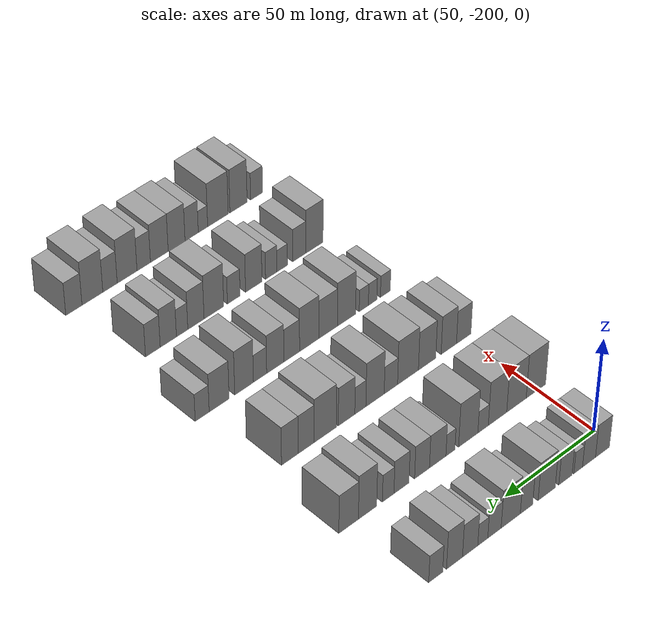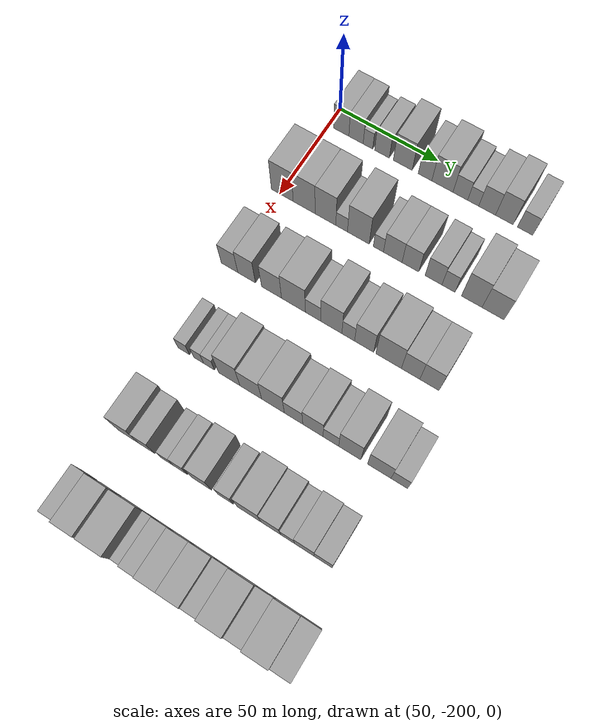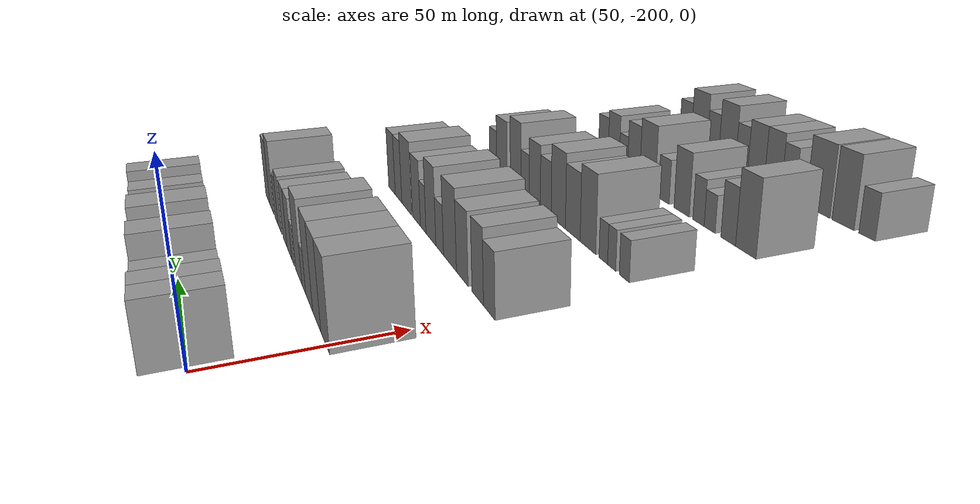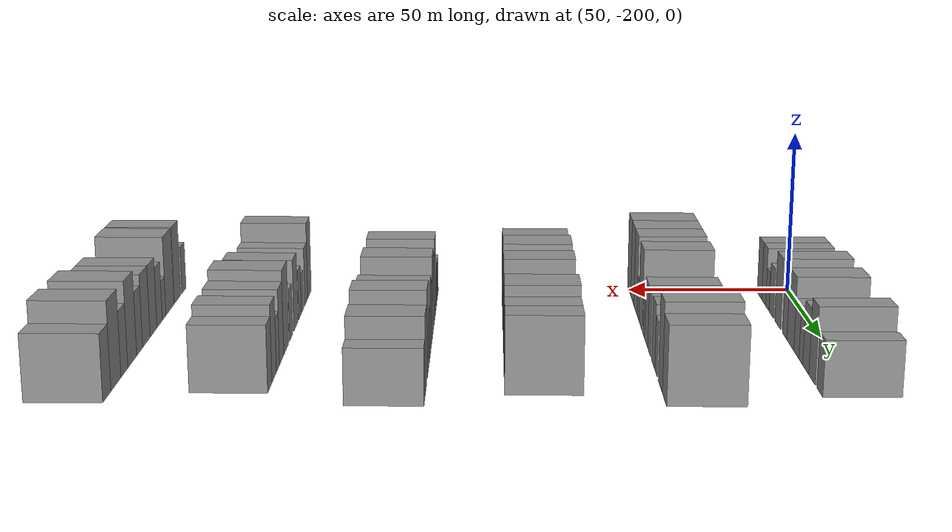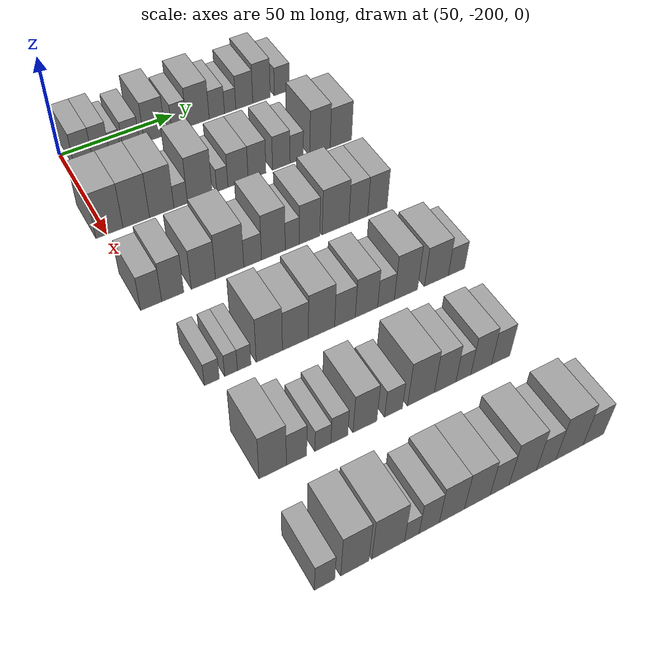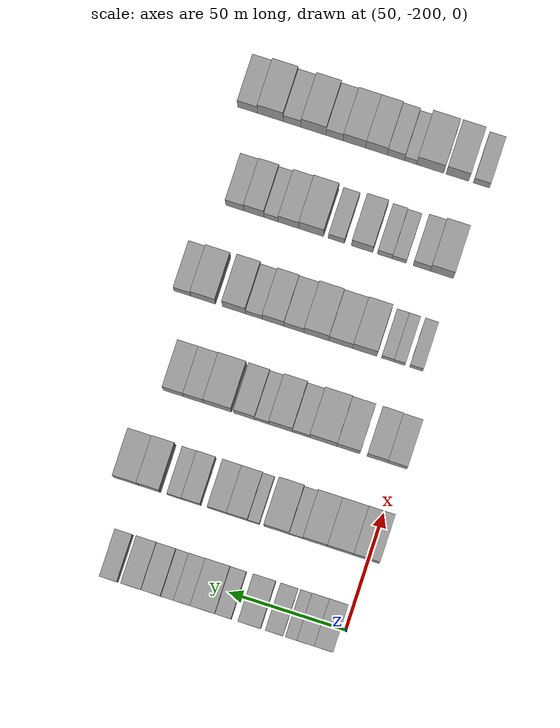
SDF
<sdf version="1.6">
 <world name="default">
  <model name="building_49">
   <static>1</static>
   <pose>50.0000 -193.6138 0 0.000000 0.000000 0.000000</pose>
   <link name="link">
    <pose>0 0 9.00 0 0 0</pose>
    <collision name="collision"><geometry><box><size>20.0000 7.9500 18.0000</size></box></geometry></collision>
    <visual name="visual">
     <cast_shadows>0</cast_shadows>
     <geometry><box><size>20.0000 7.9500 18.0000</size></box></geometry>
     <material>
      <script>
       <uri>model://grey_wall/materials/scripts</uri>
       <uri>model://grey_wall/materials/textures</uri>
       <name>vrc/grey_wall</name>
      </script>
     </material>
    </visual>
   </link>
  </model>
  <model name="building_50">
   <static>1</static>
   <pose>50.0000 -185.9637 0 0.000000 0.000000 0.000000</pose>
   <link name="link">
    <pose>0 0 9.00 0 0 0</pose>
    <collision name="collision"><geometry><box><size>20.0000 7.3501 18.0000</size></box></geometry></collision>
    <visual name="visual">
     <cast_shadows>0</cast_shadows>
     <geometry><box><size>20.0000 7.3501 18.0000</size></box></geometry>
     <material>
      <script>
       <uri>model://grey_wall/materials/scripts</uri>
       <uri>model://grey_wall/materials/textures</uri>
       <name>vrc/grey_wall</name>
      </script>
     </material>
    </visual>
   </link>
  </model>
  <model name="building_51">
   <static>1</static>
   <pose>50.0000 -179.8526 0 0.000000 0.000000 0.000000</pose>
   <link name="link">
    <pose>0 0 6.00 0 0 0</pose>
    <collision name="collision"><geometry><box><size>20.0000 4.8722 12.0000</size></box></geometry></collision>
    <visual name="visual">
     <cast_shadows>0</cast_shadows>
     <geometry><box><size>20.0000 4.8722 12.0000</size></box></geometry>
     <material>
      <script>
       <uri>model://grey_wall/materials/scripts</uri>
       <uri>model://grey_wall/materials/textures</uri>
       <name>vrc/grey_wall</name>
      </script>
     </material>
    </visual>
   </link>
  </model>
  <model name="building_52">
   <static>1</static>
   <pose>50.0000 -172.6999 0 0.000000 0.000000 0.000000</pose>
   <link name="link">
    <pose>0 0 7.50 0 0 0</pose>
    <collision name="collision"><geometry><box><size>20.0000 7.4332 15.0000</size></box></geometry></collision>
    <visual name="visual">
     <cast_shadows>0</cast_shadows>
     <geometry><box><size>20.0000 7.4332 15.0000</size></box></geometry>
     <material>
      <script>
       <uri>model://grey_wall/materials/scripts</uri>
       <uri>model://grey_wall/materials/textures</uri>
       <name>vrc/grey_wall</name>
      </script>
     </material>
    </visual>
   </link>
  </model>
  <model name="building_53">
   <static>1</static>
   <pose>50.0000 -162.2387 0 0.000000 0.000000 0.000000</pose>
   <link name="link">
    <pose>0 0 10.50 0 0 0</pose>
    <collision name="collision"><geometry><box><size>20.0000 9.4893 21.0000</size></box></geometry></collision>
    <visual name="visual">
     <cast_shadows>0</cast_shadows>
     <geometry><box><size>20.0000 9.4893 21.0000</size></box></geometry>
     <material>
      <script>
       <uri>model://grey_wall/materials/scripts</uri>
       <uri>model://grey_wall/materials/textures</uri>
       <name>vrc/grey_wall</name>
      </script>
     </material>
    </visual>
   </link>
  </model>
  <model name="building_54">
   <static>1</static>
   <pose>50.0000 -151.1109 0 0.000000 0.000000 0.000000</pose>
   <link name="link">
    <pose>0 0 7.50 0 0 0</pose>
    <collision name="collision"><geometry><box><size>20.0000 6.7663 15.0000</size></box></geometry></collision>
    <visual name="visual">
     <cast_shadows>0</cast_shadows>
     <geometry><box><size>20.0000 6.7663 15.0000</size></box></geometry>
     <material>
      <script>
       <uri>model://grey_wall/materials/scripts</uri>
       <uri>model://grey_wall/materials/textures</uri>
       <name>vrc/grey_wall</name>
      </script>
     </material>
    </visual>
   </link>
  </model>
  <model name="building_55">
   <static>1</static>
   <pose>50.0000 -142.5127 0 0.000000 0.000000 0.000000</pose>
   <link name="link">
    <pose>0 0 10.50 0 0 0</pose>
    <collision name="collision"><geometry><box><size>20.0000 10.4299 21.0000</size></box></geometry></collision>
    <visual name="visual">
     <cast_shadows>0</cast_shadows>
     <geometry><box><size>20.0000 10.4299 21.0000</size></box></geometry>
     <material>
      <script>
       <uri>model://grey_wall/materials/scripts</uri>
       <uri>model://grey_wall/materials/textures</uri>
       <name>vrc/grey_wall</name>
      </script>
     </material>
    </visual>
   </link>
  </model>
  <model name="building_56">
   <static>1</static>
   <pose>50.0000 -133.7003 0 0.000000 0.000000 0.000000</pose>
   <link name="link">
    <pose>0 0 7.50 0 0 0</pose>
    <collision name="collision"><geometry><box><size>20.0000 7.1949 15.0000</size></box></geometry></collision>
    <visual name="visual">
     <cast_shadows>0</cast_shadows>
     <geometry><box><size>20.0000 7.1949 15.0000</size></box></geometry>
     <material>
      <script>
       <uri>model://grey_wall/materials/scripts</uri>
       <uri>model://grey_wall/materials/textures</uri>
       <name>vrc/grey_wall</name>
      </script>
     </material>
    </visual>
   </link>
  </model>
  <model name="building_57">
   <static>1</static>
   <pose>50.0000 -127.4242 0 0.000000 0.000000 0.000000</pose>
   <link name="link">
    <pose>0 0 6.00 0 0 0</pose>
    <collision name="collision"><geometry><box><size>20.0000 5.3573 12.0000</size></box></geometry></collision>
    <visual name="visual">
     <cast_shadows>0</cast_shadows>
     <geometry><box><size>20.0000 5.3573 12.0000</size></box></geometry>
     <material>
      <script>
       <uri>model://grey_wall/materials/scripts</uri>
       <uri>model://grey_wall/materials/textures</uri>
       <name>vrc/grey_wall</name>
      </script>
     </material>
    </visual>
   </link>
  </model>
  <model name="building_58">
   <static>1</static>
   <pose>50.0000 -120.6747 0 0.000000 0.000000 0.000000</pose>
   <link name="link">
    <pose>0 0 9.00 0 0 0</pose>
    <collision name="collision"><geometry><box><size>20.0000 8.1415 18.0000</size></box></geometry></collision>
    <visual name="visual">
     <cast_shadows>0</cast_shadows>
     <geometry><box><size>20.0000 8.1415 18.0000</size></box></geometry>
     <material>
      <script>
       <uri>model://grey_wall/materials/scripts</uri>
       <uri>model://grey_wall/materials/textures</uri>
       <name>vrc/grey_wall</name>
      </script>
     </material>
    </visual>
   </link>
  </model>
  <model name="building_59">
   <static>1</static>
   <pose>50.0000 -112.3836 0 0.000000 0.000000 0.000000</pose>
   <link name="link">
    <pose>0 0 10.50 0 0 0</pose>
    <collision name="collision"><geometry><box><size>20.0000 8.4407 21.0000</size></box></geometry></collision>
    <visual name="visual">
     <cast_shadows>0</cast_shadows>
     <geometry><box><size>20.0000 8.4407 21.0000</size></box></geometry>
     <material>
      <script>
       <uri>model://grey_wall/materials/scripts</uri>
       <uri>model://grey_wall/materials/textures</uri>
       <name>vrc/grey_wall</name>
      </script>
     </material>
    </visual>
   </link>
  </model>
  <model name="building_60">
   <static>1</static>
   <pose>50.0000 -102.4915 0 0.000000 0.000000 0.000000</pose>
   <link name="link">
    <pose>0 0 7.50 0 0 0</pose>
    <collision name="collision"><geometry><box><size>20.0000 7.3436 15.0000</size></box></geometry></collision>
    <visual name="visual">
     <cast_shadows>0</cast_shadows>
     <geometry><box><size>20.0000 7.3436 15.0000</size></box></geometry>
     <material>
      <script>
       <uri>model://grey_wall/materials/scripts</uri>
       <uri>model://grey_wall/materials/textures</uri>
       <name>vrc/grey_wall</name>
      </script>
     </material>
    </visual>
   </link>
  </model>
  <model name="building_183">
   <static>1</static>
   <pose>90.0000 -198.7965 0 0.000000 0.000000 0.000000</pose>
   <link name="link">
    <pose>0 0 12.00 0 0 0</pose>
    <collision name="collision"><geometry><box><size>20.0000 11.0806 24.0000</size></box></geometry></collision>
    <visual name="visual">
     <cast_shadows>0</cast_shadows>
     <geometry><box><size>20.0000 11.0806 24.0000</size></box></geometry>
     <material>
      <script>
       <uri>model://grey_wall/materials/scripts</uri>
       <uri>model://grey_wall/materials/textures</uri>
       <name>vrc/grey_wall</name>
      </script>
     </material>
    </visual>
   </link>
  </model>
  <model name="building_184">
   <static>1</static>
   <pose>90.0000 -187.7312 0 0.000000 0.000000 0.000000</pose>
   <link name="link">
    <pose>0 0 12.00 0 0 0</pose>
    <collision name="collision"><geometry><box><size>20.0000 11.0500 24.0000</size></box></geometry></collision>
    <visual name="visual">
     <cast_shadows>0</cast_shadows>
     <geometry><box><size>20.0000 11.0500 24.0000</size></box></geometry>
     <material>
      <script>
       <uri>model://grey_wall/materials/scripts</uri>
       <uri>model://grey_wall/materials/textures</uri>
       <name>vrc/grey_wall</name>
      </script>
     </material>
    </visual>
   </link>
  </model>
  <model name="building_185">
   <static>1</static>
   <pose>90.0000 -177.0388 0 0.000000 0.000000 0.000000</pose>
   <link name="link">
    <pose>0 0 12.00 0 0 0</pose>
    <collision name="collision"><geometry><box><size>20.0000 10.3347 24.0000</size></box></geometry></collision>
    <visual name="visual">
     <cast_shadows>0</cast_shadows>
     <geometry><box><size>20.0000 10.3347 24.0000</size></box></geometry>
     <material>
      <script>
       <uri>model://grey_wall/materials/scripts</uri>
       <uri>model://grey_wall/materials/textures</uri>
       <name>vrc/grey_wall</name>
      </script>
     </material>
    </visual>
   </link>
  </model>
  <model name="building_186">
   <static>1</static>
   <pose>90.0000 -168.9630 0 0.000000 0.000000 0.000000</pose>
   <link name="link">
    <pose>0 0 6.00 0 0 0</pose>
    <collision name="collision"><geometry><box><size>20.0000 5.8170 12.0000</size></box></geometry></collision>
    <visual name="visual">
     <cast_shadows>0</cast_shadows>
     <geometry><box><size>20.0000 5.8170 12.0000</size></box></geometry>
     <material>
      <script>
       <uri>model://grey_wall/materials/scripts</uri>
       <uri>model://grey_wall/materials/textures</uri>
       <name>vrc/grey_wall</name>
      </script>
     </material>
    </visual>
   </link>
  </model>
  <model name="building_187">
   <static>1</static>
   <pose>90.0000 -160.7161 0 0.000000 0.000000 0.000000</pose>
   <link name="link">
    <pose>0 0 12.00 0 0 0</pose>
    <collision name="collision"><geometry><box><size>20.0000 10.6766 24.0000</size></box></geometry></collision>
    <visual name="visual">
     <cast_shadows>0</cast_shadows>
     <geometry><box><size>20.0000 10.6766 24.0000</size></box></geometry>
     <material>
      <script>
       <uri>model://grey_wall/materials/scripts</uri>
       <uri>model://grey_wall/materials/textures</uri>
       <name>vrc/grey_wall</name>
      </script>
     </material>
    </visual>
   </link>
  </model>
  <model name="building_188">
   <static>1</static>
   <pose>90.0000 -150.8990 0 0.000000 0.000000 0.000000</pose>
   <link name="link">
    <pose>0 0 6.00 0 0 0</pose>
    <collision name="collision"><geometry><box><size>20.0000 4.9576 12.0000</size></box></geometry></collision>
    <visual name="visual">
     <cast_shadows>0</cast_shadows>
     <geometry><box><size>20.0000 4.9576 12.0000</size></box></geometry>
     <material>
      <script>
       <uri>model://grey_wall/materials/scripts</uri>
       <uri>model://grey_wall/materials/textures</uri>
       <name>vrc/grey_wall</name>
      </script>
     </material>
    </visual>
   </link>
  </model>
  <model name="building_189">
   <static>1</static>
   <pose>90.0000 -143.9387 0 0.000000 0.000000 0.000000</pose>
   <link name="link">
    <pose>0 0 9.00 0 0 0</pose>
    <collision name="collision"><geometry><box><size>20.0000 8.9630 18.0000</size></box></geometry></collision>
    <visual name="visual">
     <cast_shadows>0</cast_shadows>
     <geometry><box><size>20.0000 8.9630 18.0000</size></box></geometry>
     <material>
      <script>
       <uri>model://grey_wall/materials/scripts</uri>
       <uri>model://grey_wall/materials/textures</uri>
       <name>vrc/grey_wall</name>
      </script>
     </material>
    </visual>
   </link>
  </model>
  <model name="building_190">
   <static>1</static>
   <pose>90.0000 -135.4319 0 0.000000 0.000000 0.000000</pose>
   <link name="link">
    <pose>0 0 9.00 0 0 0</pose>
    <collision name="collision"><geometry><box><size>20.0000 8.0506 18.0000</size></box></geometry></collision>
    <visual name="visual">
     <cast_shadows>0</cast_shadows>
     <geometry><box><size>20.0000 8.0506 18.0000</size></box></geometry>
     <material>
      <script>
       <uri>model://grey_wall/materials/scripts</uri>
       <uri>model://grey_wall/materials/textures</uri>
       <name>vrc/grey_wall</name>
      </script>
     </material>
    </visual>
   </link>
  </model>
  <model name="building_191">
   <static>1</static>
   <pose>90.0000 -124.3898 0 0.000000 0.000000 0.000000</pose>
   <link name="link">
    <pose>0 0 9.00 0 0 0</pose>
    <collision name="collision"><geometry><box><size>20.0000 8.0337 18.0000</size></box></geometry></collision>
    <visual name="visual">
     <cast_shadows>0</cast_shadows>
     <geometry><box><size>20.0000 8.0337 18.0000</size></box></geometry>
     <material>
      <script>
       <uri>model://grey_wall/materials/scripts</uri>
       <uri>model://grey_wall/materials/textures</uri>
       <name>vrc/grey_wall</name>
      </script>
     </material>
    </visual>
   </link>
  </model>
  <model name="building_192">
   <static>1</static>
   <pose>90.0000 -117.2927 0 0.000000 0.000000 0.000000</pose>
   <link name="link">
    <pose>0 0 7.50 0 0 0</pose>
    <collision name="collision"><geometry><box><size>20.0000 6.1603 15.0000</size></box></geometry></collision>
    <visual name="visual">
     <cast_shadows>0</cast_shadows>
     <geometry><box><size>20.0000 6.1603 15.0000</size></box></geometry>
     <material>
      <script>
       <uri>model://grey_wall/materials/scripts</uri>
       <uri>model://grey_wall/materials/textures</uri>
       <name>vrc/grey_wall</name>
      </script>
     </material>
    </visual>
   </link>
  </model>
  <model name="building_193">
   <static>1</static>
   <pose>90.0000 -106.4087 0 0.000000 0.000000 0.000000</pose>
   <link name="link">
    <pose>0 0 12.00 0 0 0</pose>
    <collision name="collision"><geometry><box><size>20.0000 9.6076 24.0000</size></box></geometry></collision>
    <visual name="visual">
     <cast_shadows>0</cast_shadows>
     <geometry><box><size>20.0000 9.6076 24.0000</size></box></geometry>
     <material>
      <script>
       <uri>model://grey_wall/materials/scripts</uri>
       <uri>model://grey_wall/materials/textures</uri>
       <name>vrc/grey_wall</name>
      </script>
     </material>
    </visual>
   </link>
  </model>
  <model name="building_194">
   <static>1</static>
   <pose>90.0000 -96.5031 0 0.000000 0.000000 0.000000</pose>
   <link name="link">
    <pose>0 0 10.50 0 0 0</pose>
    <collision name="collision"><geometry><box><size>20.0000 10.2036 21.0000</size></box></geometry></collision>
    <visual name="visual">
     <cast_shadows>0</cast_shadows>
     <geometry><box><size>20.0000 10.2036 21.0000</size></box></geometry>
     <material>
      <script>
       <uri>model://grey_wall/materials/scripts</uri>
       <uri>model://grey_wall/materials/textures</uri>
       <name>vrc/grey_wall</name>
      </script>
     </material>
    </visual>
   </link>
  </model>
  <model name="building_321">
   <static>1</static>
   <pose>130.0000 -199.1531 0 0.000000 0.000000 0.000000</pose>
   <link name="link">
    <pose>0 0 9.00 0 0 0</pose>
    <collision name="collision"><geometry><box><size>20.0000 8.2815 18.0000</size></box></geometry></collision>
    <visual name="visual">
     <cast_shadows>0</cast_shadows>
     <geometry><box><size>20.0000 8.2815 18.0000</size></box></geometry>
     <material>
      <script>
       <uri>model://grey_wall/materials/scripts</uri>
       <uri>model://grey_wall/materials/textures</uri>
       <name>vrc/grey_wall</name>
      </script>
     </material>
    </visual>
   </link>
  </model>
  <model name="building_322">
   <static>1</static>
   <pose>130.0000 -190.6394 0 0.000000 0.000000 0.000000</pose>
   <link name="link">
    <pose>0 0 10.50 0 0 0</pose>
    <collision name="collision"><geometry><box><size>20.0000 8.7459 21.0000</size></box></geometry></collision>
    <visual name="visual">
     <cast_shadows>0</cast_shadows>
     <geometry><box><size>20.0000 8.7459 21.0000</size></box></geometry>
     <material>
      <script>
       <uri>model://grey_wall/materials/scripts</uri>
       <uri>model://grey_wall/materials/textures</uri>
       <name>vrc/grey_wall</name>
      </script>
     </material>
    </visual>
   </link>
  </model>
  <model name="building_323">
   <static>1</static>
   <pose>130.0000 -178.3749 0 0.000000 0.000000 0.000000</pose>
   <link name="link">
    <pose>0 0 10.50 0 0 0</pose>
    <collision name="collision"><geometry><box><size>20.0000 9.7831 21.0000</size></box></geometry></collision>
    <visual name="visual">
     <cast_shadows>0</cast_shadows>
     <geometry><box><size>20.0000 9.7831 21.0000</size></box></geometry>
     <material>
      <script>
       <uri>model://grey_wall/materials/scripts</uri>
       <uri>model://grey_wall/materials/textures</uri>
       <name>vrc/grey_wall</name>
      </script>
     </material>
    </visual>
   </link>
  </model>
  <model name="building_324">
   <static>1</static>
   <pose>130.0000 -167.6653 0 0.000000 0.000000 0.000000</pose>
   <link name="link">
    <pose>0 0 12.00 0 0 0</pose>
    <collision name="collision"><geometry><box><size>20.0000 11.6360 24.0000</size></box></geometry></collision>
    <visual name="visual">
     <cast_shadows>0</cast_shadows>
     <geometry><box><size>20.0000 11.6360 24.0000</size></box></geometry>
     <material>
      <script>
       <uri>model://grey_wall/materials/scripts</uri>
       <uri>model://grey_wall/materials/textures</uri>
       <name>vrc/grey_wall</name>
      </script>
     </material>
    </visual>
   </link>
  </model>
  <model name="building_325">
   <static>1</static>
   <pose>130.0000 -158.1570 0 0.000000 0.000000 0.000000</pose>
   <link name="link">
    <pose>0 0 7.50 0 0 0</pose>
    <collision name="collision"><geometry><box><size>20.0000 7.3804 15.0000</size></box></geometry></collision>
    <visual name="visual">
     <cast_shadows>0</cast_shadows>
     <geometry><box><size>20.0000 7.3804 15.0000</size></box></geometry>
     <material>
      <script>
       <uri>model://grey_wall/materials/scripts</uri>
       <uri>model://grey_wall/materials/textures</uri>
       <name>vrc/grey_wall</name>
      </script>
     </material>
    </visual>
   </link>
  </model>
  <model name="building_326">
   <static>1</static>
   <pose>130.0000 -149.4421 0 0.000000 0.000000 0.000000</pose>
   <link name="link">
    <pose>0 0 12.00 0 0 0</pose>
    <collision name="collision"><geometry><box><size>20.0000 10.0494 24.0000</size></box></geometry></collision>
    <visual name="visual">
     <cast_shadows>0</cast_shadows>
     <geometry><box><size>20.0000 10.0494 24.0000</size></box></geometry>
     <material>
      <script>
       <uri>model://grey_wall/materials/scripts</uri>
       <uri>model://grey_wall/materials/textures</uri>
       <name>vrc/grey_wall</name>
      </script>
     </material>
    </visual>
   </link>
  </model>
  <model name="building_327">
   <static>1</static>
   <pose>130.0000 -141.4119 0 0.000000 0.000000 0.000000</pose>
   <link name="link">
    <pose>0 0 7.50 0 0 0</pose>
    <collision name="collision"><geometry><box><size>20.0000 6.0112 15.0000</size></box></geometry></collision>
    <visual name="visual">
     <cast_shadows>0</cast_shadows>
     <geometry><box><size>20.0000 6.0112 15.0000</size></box></geometry>
     <material>
      <script>
       <uri>model://grey_wall/materials/scripts</uri>
       <uri>model://grey_wall/materials/textures</uri>
       <name>vrc/grey_wall</name>
      </script>
     </material>
    </visual>
   </link>
  </model>
  <model name="building_328">
   <static>1</static>
   <pose>130.0000 -133.9271 0 0.000000 0.000000 0.000000</pose>
   <link name="link">
    <pose>0 0 10.50 0 0 0</pose>
    <collision name="collision"><geometry><box><size>20.0000 8.9584 21.0000</size></box></geometry></collision>
    <visual name="visual">
     <cast_shadows>0</cast_shadows>
     <geometry><box><size>20.0000 8.9584 21.0000</size></box></geometry>
     <material>
      <script>
       <uri>model://grey_wall/materials/scripts</uri>
       <uri>model://grey_wall/materials/textures</uri>
       <name>vrc/grey_wall</name>
      </script>
     </material>
    </visual>
   </link>
  </model>
  <model name="building_329">
   <static>1</static>
   <pose>130.0000 -122.5182 0 0.000000 0.000000 0.000000</pose>
   <link name="link">
    <pose>0 0 12.00 0 0 0</pose>
    <collision name="collision"><geometry><box><size>20.0000 11.8593 24.0000</size></box></geometry></collision>
    <visual name="visual">
     <cast_shadows>0</cast_shadows>
     <geometry><box><size>20.0000 11.8593 24.0000</size></box></geometry>
     <material>
      <script>
       <uri>model://grey_wall/materials/scripts</uri>
       <uri>model://grey_wall/materials/textures</uri>
       <name>vrc/grey_wall</name>
      </script>
     </material>
    </visual>
   </link>
  </model>
  <model name="building_330">
   <static>1</static>
   <pose>130.0000 -112.3462 0 0.000000 0.000000 0.000000</pose>
   <link name="link">
    <pose>0 0 10.50 0 0 0</pose>
    <collision name="collision"><geometry><box><size>20.0000 8.4847 21.0000</size></box></geometry></collision>
    <visual name="visual">
     <cast_shadows>0</cast_shadows>
     <geometry><box><size>20.0000 8.4847 21.0000</size></box></geometry>
     <material>
      <script>
       <uri>model://grey_wall/materials/scripts</uri>
       <uri>model://grey_wall/materials/textures</uri>
       <name>vrc/grey_wall</name>
      </script>
     </material>
    </visual>
   </link>
  </model>
  <model name="building_331">
   <static>1</static>
   <pose>130.0000 -103.7130 0 0.000000 0.000000 0.000000</pose>
   <link name="link">
    <pose>0 0 10.50 0 0 0</pose>
    <collision name="collision"><geometry><box><size>20.0000 8.7819 21.0000</size></box></geometry></collision>
    <visual name="visual">
     <cast_shadows>0</cast_shadows>
     <geometry><box><size>20.0000 8.7819 21.0000</size></box></geometry>
     <material>
      <script>
       <uri>model://grey_wall/materials/scripts</uri>
       <uri>model://grey_wall/materials/textures</uri>
       <name>vrc/grey_wall</name>
      </script>
     </material>
    </visual>
   </link>
  </model>
  <model name="building_466">
   <static>1</static>
   <pose>170.0000 -194.4343 0 0.000000 0.000000 0.000000</pose>
   <link name="link">
    <pose>0 0 6.00 0 0 0</pose>
    <collision name="collision"><geometry><box><size>20.0000 5.6229 12.0000</size></box></geometry></collision>
    <visual name="visual">
     <cast_shadows>0</cast_shadows>
     <geometry><box><size>20.0000 5.6229 12.0000</size></box></geometry>
     <material>
      <script>
       <uri>model://grey_wall/materials/scripts</uri>
       <uri>model://grey_wall/materials/textures</uri>
       <name>vrc/grey_wall</name>
      </script>
     </material>
    </visual>
   </link>
  </model>
  <model name="building_467">
   <static>1</static>
   <pose>170.0000 -187.1990 0 0.000000 0.000000 0.000000</pose>
   <link name="link">
    <pose>0 0 6.00 0 0 0</pose>
    <collision name="collision"><geometry><box><size>20.0000 4.8477 12.0000</size></box></geometry></collision>
    <visual name="visual">
     <cast_shadows>0</cast_shadows>
     <geometry><box><size>20.0000 4.8477 12.0000</size></box></geometry>
     <material>
      <script>
       <uri>model://grey_wall/materials/scripts</uri>
       <uri>model://grey_wall/materials/textures</uri>
       <name>vrc/grey_wall</name>
      </script>
     </material>
    </visual>
   </link>
  </model>
  <model name="building_468">
   <static>1</static>
   <pose>170.0000 -182.1726 0 0.000000 0.000000 0.000000</pose>
   <link name="link">
    <pose>0 0 6.00 0 0 0</pose>
    <collision name="collision"><geometry><box><size>20.0000 5.2051 12.0000</size></box></geometry></collision>
    <visual name="visual">
     <cast_shadows>0</cast_shadows>
     <geometry><box><size>20.0000 5.2051 12.0000</size></box></geometry>
     <material>
      <script>
       <uri>model://grey_wall/materials/scripts</uri>
       <uri>model://grey_wall/materials/textures</uri>
       <name>vrc/grey_wall</name>
      </script>
     </material>
    </visual>
   </link>
  </model>
  <model name="building_469">
   <static>1</static>
   <pose>170.0000 -172.4586 0 0.000000 0.000000 0.000000</pose>
   <link name="link">
    <pose>0 0 12.00 0 0 0</pose>
    <collision name="collision"><geometry><box><size>20.0000 10.2230 24.0000</size></box></geometry></collision>
    <visual name="visual">
     <cast_shadows>0</cast_shadows>
     <geometry><box><size>20.0000 10.2230 24.0000</size></box></geometry>
     <material>
      <script>
       <uri>model://grey_wall/materials/scripts</uri>
       <uri>model://grey_wall/materials/textures</uri>
       <name>vrc/grey_wall</name>
      </script>
     </material>
    </visual>
   </link>
  </model>
  <model name="building_470">
   <static>1</static>
   <pose>170.0000 -162.2160 0 0.000000 0.000000 0.000000</pose>
   <link name="link">
    <pose>0 0 10.50 0 0 0</pose>
    <collision name="collision"><geometry><box><size>20.0000 10.2623 21.0000</size></box></geometry></collision>
    <visual name="visual">
     <cast_shadows>0</cast_shadows>
     <geometry><box><size>20.0000 10.2623 21.0000</size></box></geometry>
     <material>
      <script>
       <uri>model://grey_wall/materials/scripts</uri>
       <uri>model://grey_wall/materials/textures</uri>
       <name>vrc/grey_wall</name>
      </script>
     </material>
    </visual>
   </link>
  </model>
  <model name="building_471">
   <static>1</static>
   <pose>170.0000 -151.7544 0 0.000000 0.000000 0.000000</pose>
   <link name="link">
    <pose>0 0 12.00 0 0 0</pose>
    <collision name="collision"><geometry><box><size>20.0000 10.6608 24.0000</size></box></geometry></collision>
    <visual name="visual">
     <cast_shadows>0</cast_shadows>
     <geometry><box><size>20.0000 10.6608 24.0000</size></box></geometry>
     <material>
      <script>
       <uri>model://grey_wall/materials/scripts</uri>
       <uri>model://grey_wall/materials/textures</uri>
       <name>vrc/grey_wall</name>
      </script>
     </material>
    </visual>
   </link>
  </model>
  <model name="building_472">
   <static>1</static>
   <pose>170.0000 -142.1585 0 0.000000 0.000000 0.000000</pose>
   <link name="link">
    <pose>0 0 9.00 0 0 0</pose>
    <collision name="collision"><geometry><box><size>20.0000 8.5311 18.0000</size></box></geometry></collision>
    <visual name="visual">
     <cast_shadows>0</cast_shadows>
     <geometry><box><size>20.0000 8.5311 18.0000</size></box></geometry>
     <material>
      <script>
       <uri>model://grey_wall/materials/scripts</uri>
       <uri>model://grey_wall/materials/textures</uri>
       <name>vrc/grey_wall</name>
      </script>
     </material>
    </visual>
   </link>
  </model>
  <model name="building_473">
   <static>1</static>
   <pose>170.0000 -133.2182 0 0.000000 0.000000 0.000000</pose>
   <link name="link">
    <pose>0 0 10.50 0 0 0</pose>
    <collision name="collision"><geometry><box><size>20.0000 9.3494 21.0000</size></box></geometry></collision>
    <visual name="visual">
     <cast_shadows>0</cast_shadows>
     <geometry><box><size>20.0000 9.3494 21.0000</size></box></geometry>
     <material>
      <script>
       <uri>model://grey_wall/materials/scripts</uri>
       <uri>model://grey_wall/materials/textures</uri>
       <name>vrc/grey_wall</name>
      </script>
     </material>
    </visual>
   </link>
  </model>
  <model name="building_474">
   <static>1</static>
   <pose>170.0000 -124.9927 0 0.000000 0.000000 0.000000</pose>
   <link name="link">
    <pose>0 0 7.50 0 0 0</pose>
    <collision name="collision"><geometry><box><size>20.0000 7.1015 15.0000</size></box></geometry></collision>
    <visual name="visual">
     <cast_shadows>0</cast_shadows>
     <geometry><box><size>20.0000 7.1015 15.0000</size></box></geometry>
     <material>
      <script>
       <uri>model://grey_wall/materials/scripts</uri>
       <uri>model://grey_wall/materials/textures</uri>
       <name>vrc/grey_wall</name>
      </script>
     </material>
    </visual>
   </link>
  </model>
  <model name="building_475">
   <static>1</static>
   <pose>170.0000 -116.4609 0 0.000000 0.000000 0.000000</pose>
   <link name="link">
    <pose>0 0 12.00 0 0 0</pose>
    <collision name="collision"><geometry><box><size>20.0000 9.9622 24.0000</size></box></geometry></collision>
    <visual name="visual">
     <cast_shadows>0</cast_shadows>
     <geometry><box><size>20.0000 9.9622 24.0000</size></box></geometry>
     <material>
      <script>
       <uri>model://grey_wall/materials/scripts</uri>
       <uri>model://grey_wall/materials/textures</uri>
       <name>vrc/grey_wall</name>
      </script>
     </material>
    </visual>
   </link>
  </model>
  <model name="building_476">
   <static>1</static>
   <pose>170.0000 -103.2334 0 0.000000 0.000000 0.000000</pose>
   <link name="link">
    <pose>0 0 10.50 0 0 0</pose>
    <collision name="collision"><geometry><box><size>20.0000 10.4927 21.0000</size></box></geometry></collision>
    <visual name="visual">
     <cast_shadows>0</cast_shadows>
     <geometry><box><size>20.0000 10.4927 21.0000</size></box></geometry>
     <material>
      <script>
       <uri>model://grey_wall/materials/scripts</uri>
       <uri>model://grey_wall/materials/textures</uri>
       <name>vrc/grey_wall</name>
      </script>
     </material>
    </visual>
   </link>
  </model>
  <model name="building_477">
   <static>1</static>
   <pose>170.0000 -94.3351 0 0.000000 0.000000 0.000000</pose>
   <link name="link">
    <pose>0 0 7.50 0 0 0</pose>
    <collision name="collision"><geometry><box><size>20.0000 7.3040 15.0000</size></box></geometry></collision>
    <visual name="visual">
     <cast_shadows>0</cast_shadows>
     <geometry><box><size>20.0000 7.3040 15.0000</size></box></geometry>
     <material>
      <script>
       <uri>model://grey_wall/materials/scripts</uri>
       <uri>model://grey_wall/materials/textures</uri>
       <name>vrc/grey_wall</name>
      </script>
     </material>
    </visual>
   </link>
  </model>
  <model name="building_608">
   <static>1</static>
   <pose>210.0000 -192.5169 0 0.000000 0.000000 0.000000</pose>
   <link name="link">
    <pose>0 0 12.00 0 0 0</pose>
    <collision name="collision"><geometry><box><size>20.0000 9.8136 24.0000</size></box></geometry></collision>
    <visual name="visual">
     <cast_shadows>0</cast_shadows>
     <geometry><box><size>20.0000 9.8136 24.0000</size></box></geometry>
     <material>
      <script>
       <uri>model://grey_wall/materials/scripts</uri>
       <uri>model://grey_wall/materials/textures</uri>
       <name>vrc/grey_wall</name>
      </script>
     </material>
    </visual>
   </link>
  </model>
  <model name="building_609">
   <static>1</static>
   <pose>210.0000 -183.8991 0 0.000000 0.000000 0.000000</pose>
   <link name="link">
    <pose>0 0 9.00 0 0 0</pose>
    <collision name="collision"><geometry><box><size>20.0000 7.4220 18.0000</size></box></geometry></collision>
    <visual name="visual">
     <cast_shadows>0</cast_shadows>
     <geometry><box><size>20.0000 7.4220 18.0000</size></box></geometry>
     <material>
      <script>
       <uri>model://grey_wall/materials/scripts</uri>
       <uri>model://grey_wall/materials/textures</uri>
       <name>vrc/grey_wall</name>
      </script>
     </material>
    </visual>
   </link>
  </model>
  <model name="building_610">
   <static>1</static>
   <pose>210.0000 -174.2164 0 0.000000 0.000000 0.000000</pose>
   <link name="link">
    <pose>0 0 6.00 0 0 0</pose>
    <collision name="collision"><geometry><box><size>20.0000 5.9435 12.0000</size></box></geometry></collision>
    <visual name="visual">
     <cast_shadows>0</cast_shadows>
     <geometry><box><size>20.0000 5.9435 12.0000</size></box></geometry>
     <material>
      <script>
       <uri>model://grey_wall/materials/scripts</uri>
       <uri>model://grey_wall/materials/textures</uri>
       <name>vrc/grey_wall</name>
      </script>
     </material>
    </visual>
   </link>
  </model>
  <model name="building_611">
   <static>1</static>
   <pose>210.0000 -168.0665 0 0.000000 0.000000 0.000000</pose>
   <link name="link">
    <pose>0 0 7.50 0 0 0</pose>
    <collision name="collision"><geometry><box><size>20.0000 6.3562 15.0000</size></box></geometry></collision>
    <visual name="visual">
     <cast_shadows>0</cast_shadows>
     <geometry><box><size>20.0000 6.3562 15.0000</size></box></geometry>
     <material>
      <script>
       <uri>model://grey_wall/materials/scripts</uri>
       <uri>model://grey_wall/materials/textures</uri>
       <name>vrc/grey_wall</name>
      </script>
     </material>
    </visual>
   </link>
  </model>
  <model name="building_612">
   <static>1</static>
   <pose>210.0000 -158.3302 0 0.000000 0.000000 0.000000</pose>
   <link name="link">
    <pose>0 0 10.50 0 0 0</pose>
    <collision name="collision"><geometry><box><size>20.0000 9.1164 21.0000</size></box></geometry></collision>
    <visual name="visual">
     <cast_shadows>0</cast_shadows>
     <geometry><box><size>20.0000 9.1164 21.0000</size></box></geometry>
     <material>
      <script>
       <uri>model://grey_wall/materials/scripts</uri>
       <uri>model://grey_wall/materials/textures</uri>
       <name>vrc/grey_wall</name>
      </script>
     </material>
    </visual>
   </link>
  </model>
  <model name="building_613">
   <static>1</static>
   <pose>210.0000 -147.2849 0 0.000000 0.000000 0.000000</pose>
   <link name="link">
    <pose>0 0 7.50 0 0 0</pose>
    <collision name="collision"><geometry><box><size>20.0000 6.9743 15.0000</size></box></geometry></collision>
    <visual name="visual">
     <cast_shadows>0</cast_shadows>
     <geometry><box><size>20.0000 6.9743 15.0000</size></box></geometry>
     <material>
      <script>
       <uri>model://grey_wall/materials/scripts</uri>
       <uri>model://grey_wall/materials/textures</uri>
       <name>vrc/grey_wall</name>
      </script>
     </material>
    </visual>
   </link>
  </model>
  <model name="building_614">
   <static>1</static>
   <pose>210.0000 -136.4432 0 0.000000 0.000000 0.000000</pose>
   <link name="link">
    <pose>0 0 12.00 0 0 0</pose>
    <collision name="collision"><geometry><box><size>20.0000 10.7091 24.0000</size></box></geometry></collision>
    <visual name="visual">
     <cast_shadows>0</cast_shadows>
     <geometry><box><size>20.0000 10.7091 24.0000</size></box></geometry>
     <material>
      <script>
       <uri>model://grey_wall/materials/scripts</uri>
       <uri>model://grey_wall/materials/textures</uri>
       <name>vrc/grey_wall</name>
      </script>
     </material>
    </visual>
   </link>
  </model>
  <model name="building_615">
   <static>1</static>
   <pose>210.0000 -126.7074 0 0.000000 0.000000 0.000000</pose>
   <link name="link">
    <pose>0 0 10.50 0 0 0</pose>
    <collision name="collision"><geometry><box><size>20.0000 8.7625 21.0000</size></box></geometry></collision>
    <visual name="visual">
     <cast_shadows>0</cast_shadows>
     <geometry><box><size>20.0000 8.7625 21.0000</size></box></geometry>
     <material>
      <script>
       <uri>model://grey_wall/materials/scripts</uri>
       <uri>model://grey_wall/materials/textures</uri>
       <name>vrc/grey_wall</name>
      </script>
     </material>
    </visual>
   </link>
  </model>
  <model name="building_616">
   <static>1</static>
   <pose>210.0000 -119.2696 0 0.000000 0.000000 0.000000</pose>
   <link name="link">
    <pose>0 0 7.50 0 0 0</pose>
    <collision name="collision"><geometry><box><size>20.0000 6.1130 15.0000</size></box></geometry></collision>
    <visual name="visual">
     <cast_shadows>0</cast_shadows>
     <geometry><box><size>20.0000 6.1130 15.0000</size></box></geometry>
     <material>
      <script>
       <uri>model://grey_wall/materials/scripts</uri>
       <uri>model://grey_wall/materials/textures</uri>
       <name>vrc/grey_wall</name>
      </script>
     </material>
    </visual>
   </link>
  </model>
  <model name="building_617">
   <static>1</static>
   <pose>210.0000 -111.8961 0 0.000000 0.000000 0.000000</pose>
   <link name="link">
    <pose>0 0 10.50 0 0 0</pose>
    <collision name="collision"><geometry><box><size>20.0000 8.6340 21.0000</size></box></geometry></collision>
    <visual name="visual">
     <cast_shadows>0</cast_shadows>
     <geometry><box><size>20.0000 8.6340 21.0000</size></box></geometry>
     <material>
      <script>
       <uri>model://grey_wall/materials/scripts</uri>
       <uri>model://grey_wall/materials/textures</uri>
       <name>vrc/grey_wall</name>
      </script>
     </material>
    </visual>
   </link>
  </model>
  <model name="building_618">
   <static>1</static>
   <pose>210.0000 -103.6850 0 0.000000 0.000000 0.000000</pose>
   <link name="link">
    <pose>0 0 9.00 0 0 0</pose>
    <collision name="collision"><geometry><box><size>20.0000 7.7881 18.0000</size></box></geometry></collision>
    <visual name="visual">
     <cast_shadows>0</cast_shadows>
     <geometry><box><size>20.0000 7.7881 18.0000</size></box></geometry>
     <material>
      <script>
       <uri>model://grey_wall/materials/scripts</uri>
       <uri>model://grey_wall/materials/textures</uri>
       <name>vrc/grey_wall</name>
      </script>
     </material>
    </visual>
   </link>
  </model>
  <model name="building_752">
   <static>1</static>
   <pose>250.0000 -196.6821 0 0.000000 0.000000 0.000000</pose>
   <link name="link">
    <pose>0 0 7.50 0 0 0</pose>
    <collision name="collision"><geometry><box><size>20.0000 6.9165 15.0000</size></box></geometry></collision>
    <visual name="visual">
     <cast_shadows>0</cast_shadows>
     <geometry><box><size>20.0000 6.9165 15.0000</size></box></geometry>
     <material>
      <script>
       <uri>model://grey_wall/materials/scripts</uri>
       <uri>model://grey_wall/materials/textures</uri>
       <name>vrc/grey_wall</name>
      </script>
     </material>
    </visual>
   </link>
  </model>
  <model name="building_753">
   <static>1</static>
   <pose>250.0000 -186.3409 0 0.000000 0.000000 0.000000</pose>
   <link name="link">
    <pose>0 0 12.00 0 0 0</pose>
    <collision name="collision"><geometry><box><size>20.0000 9.7659 24.0000</size></box></geometry></collision>
    <visual name="visual">
     <cast_shadows>0</cast_shadows>
     <geometry><box><size>20.0000 9.7659 24.0000</size></box></geometry>
     <material>
      <script>
       <uri>model://grey_wall/materials/scripts</uri>
       <uri>model://grey_wall/materials/textures</uri>
       <name>vrc/grey_wall</name>
      </script>
     </material>
    </visual>
   </link>
  </model>
  <model name="building_754">
   <static>1</static>
   <pose>250.0000 -174.6660 0 0.000000 0.000000 0.000000</pose>
   <link name="link">
    <pose>0 0 12.00 0 0 0</pose>
    <collision name="collision"><geometry><box><size>20.0000 11.5839 24.0000</size></box></geometry></collision>
    <visual name="visual">
     <cast_shadows>0</cast_shadows>
     <geometry><box><size>20.0000 11.5839 24.0000</size></box></geometry>
     <material>
      <script>
       <uri>model://grey_wall/materials/scripts</uri>
       <uri>model://grey_wall/materials/textures</uri>
       <name>vrc/grey_wall</name>
      </script>
     </material>
    </visual>
   </link>
  </model>
  <model name="building_755">
   <static>1</static>
   <pose>250.0000 -166.2453 0 0.000000 0.000000 0.000000</pose>
   <link name="link">
    <pose>0 0 6.00 0 0 0</pose>
    <collision name="collision"><geometry><box><size>20.0000 5.2575 12.0000</size></box></geometry></collision>
    <visual name="visual">
     <cast_shadows>0</cast_shadows>
     <geometry><box><size>20.0000 5.2575 12.0000</size></box></geometry>
     <material>
      <script>
       <uri>model://grey_wall/materials/scripts</uri>
       <uri>model://grey_wall/materials/textures</uri>
       <name>vrc/grey_wall</name>
      </script>
     </material>
    </visual>
   </link>
  </model>
  <model name="building_756">
   <static>1</static>
   <pose>250.0000 -159.9228 0 0.000000 0.000000 0.000000</pose>
   <link name="link">
    <pose>0 0 9.00 0 0 0</pose>
    <collision name="collision"><geometry><box><size>20.0000 7.3875 18.0000</size></box></geometry></collision>
    <visual name="visual">
     <cast_shadows>0</cast_shadows>
     <geometry><box><size>20.0000 7.3875 18.0000</size></box></geometry>
     <material>
      <script>
       <uri>model://grey_wall/materials/scripts</uri>
       <uri>model://grey_wall/materials/textures</uri>
       <name>vrc/grey_wall</name>
      </script>
     </material>
    </visual>
   </link>
  </model>
  <model name="building_757">
   <static>1</static>
   <pose>250.0000 -151.5741 0 0.000000 0.000000 0.000000</pose>
   <link name="link">
    <pose>0 0 10.50 0 0 0</pose>
    <collision name="collision"><geometry><box><size>20.0000 9.3100 21.0000</size></box></geometry></collision>
    <visual name="visual">
     <cast_shadows>0</cast_shadows>
     <geometry><box><size>20.0000 9.3100 21.0000</size></box></geometry>
     <material>
      <script>
       <uri>model://grey_wall/materials/scripts</uri>
       <uri>model://grey_wall/materials/textures</uri>
       <name>vrc/grey_wall</name>
      </script>
     </material>
    </visual>
   </link>
  </model>
  <model name="building_758">
   <static>1</static>
   <pose>250.0000 -142.0632 0 0.000000 0.000000 0.000000</pose>
   <link name="link">
    <pose>0 0 10.50 0 0 0</pose>
    <collision name="collision"><geometry><box><size>20.0000 9.7118 21.0000</size></box></geometry></collision>
    <visual name="visual">
     <cast_shadows>0</cast_shadows>
     <geometry><box><size>20.0000 9.7118 21.0000</size></box></geometry>
     <material>
      <script>
       <uri>model://grey_wall/materials/scripts</uri>
       <uri>model://grey_wall/materials/textures</uri>
       <name>vrc/grey_wall</name>
      </script>
     </material>
    </visual>
   </link>
  </model>
  <model name="building_759">
   <static>1</static>
   <pose>250.0000 -133.5440 0 0.000000 0.000000 0.000000</pose>
   <link name="link">
    <pose>0 0 9.00 0 0 0</pose>
    <collision name="collision"><geometry><box><size>20.0000 7.3266 18.0000</size></box></geometry></collision>
    <visual name="visual">
     <cast_shadows>0</cast_shadows>
     <geometry><box><size>20.0000 7.3266 18.0000</size></box></geometry>
     <material>
      <script>
       <uri>model://grey_wall/materials/scripts</uri>
       <uri>model://grey_wall/materials/textures</uri>
       <name>vrc/grey_wall</name>
      </script>
     </material>
    </visual>
   </link>
  </model>
  <model name="building_760">
   <static>1</static>
   <pose>250.0000 -124.5284 0 0.000000 0.000000 0.000000</pose>
   <link name="link">
    <pose>0 0 12.00 0 0 0</pose>
    <collision name="collision"><geometry><box><size>20.0000 10.7046 24.0000</size></box></geometry></collision>
    <visual name="visual">
     <cast_shadows>0</cast_shadows>
     <geometry><box><size>20.0000 10.7046 24.0000</size></box></geometry>
     <material>
      <script>
       <uri>model://grey_wall/materials/scripts</uri>
       <uri>model://grey_wall/materials/textures</uri>
       <name>vrc/grey_wall</name>
      </script>
     </material>
    </visual>
   </link>
  </model>
  <model name="building_761">
   <static>1</static>
   <pose>250.0000 -115.3183 0 0.000000 0.000000 0.000000</pose>
   <link name="link">
    <pose>0 0 9.00 0 0 0</pose>
    <collision name="collision"><geometry><box><size>20.0000 7.7156 18.0000</size></box></geometry></collision>
    <visual name="visual">
     <cast_shadows>0</cast_shadows>
     <geometry><box><size>20.0000 7.7156 18.0000</size></box></geometry>
     <material>
      <script>
       <uri>model://grey_wall/materials/scripts</uri>
       <uri>model://grey_wall/materials/textures</uri>
       <name>vrc/grey_wall</name>
      </script>
     </material>
    </visual>
   </link>
  </model>
  <model name="building_762">
   <static>1</static>
   <pose>250.0000 -105.9332 0 0.000000 0.000000 0.000000</pose>
   <link name="link">
    <pose>0 0 12.00 0 0 0</pose>
    <collision name="collision"><geometry><box><size>20.0000 11.0545 24.0000</size></box></geometry></collision>
    <visual name="visual">
     <cast_shadows>0</cast_shadows>
     <geometry><box><size>20.0000 11.0545 24.0000</size></box></geometry>
     <material>
      <script>
       <uri>model://grey_wall/materials/scripts</uri>
       <uri>model://grey_wall/materials/textures</uri>
       <name>vrc/grey_wall</name>
      </script>
     </material>
    </visual>
   </link>
  </model>
  <model name="building_763">
   <static>1</static>
   <pose>250.0000 -96.1313 0 0.000000 0.000000 0.000000</pose>
   <link name="link">
    <pose>0 0 9.00 0 0 0</pose>
    <collision name="collision"><geometry><box><size>20.0000 8.5493 18.0000</size></box></geometry></collision>
    <visual name="visual">
     <cast_shadows>0</cast_shadows>
     <geometry><box><size>20.0000 8.5493 18.0000</size></box></geometry>
     <material>
      <script>
       <uri>model://grey_wall/materials/scripts</uri>
       <uri>model://grey_wall/materials/textures</uri>
       <name>vrc/grey_wall</name>
      </script>
     </material>
    </visual>
   </link>
  </model>
 </world>
</sdf>
